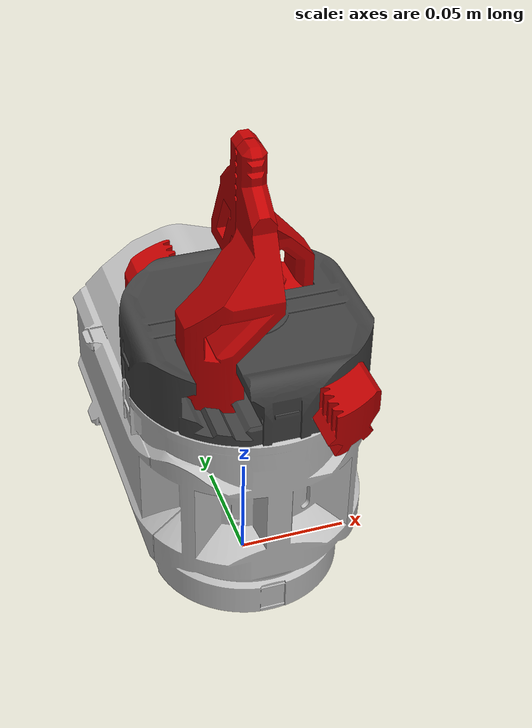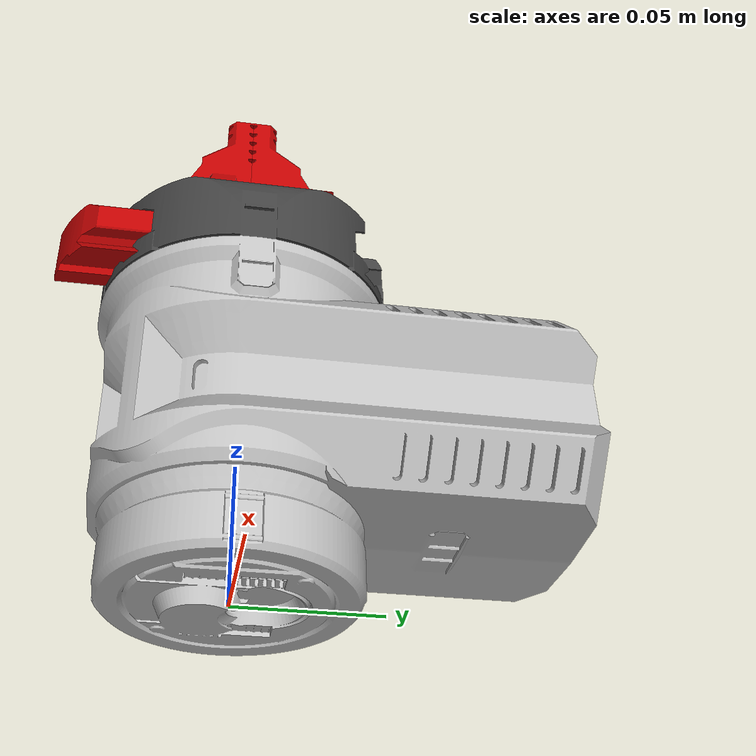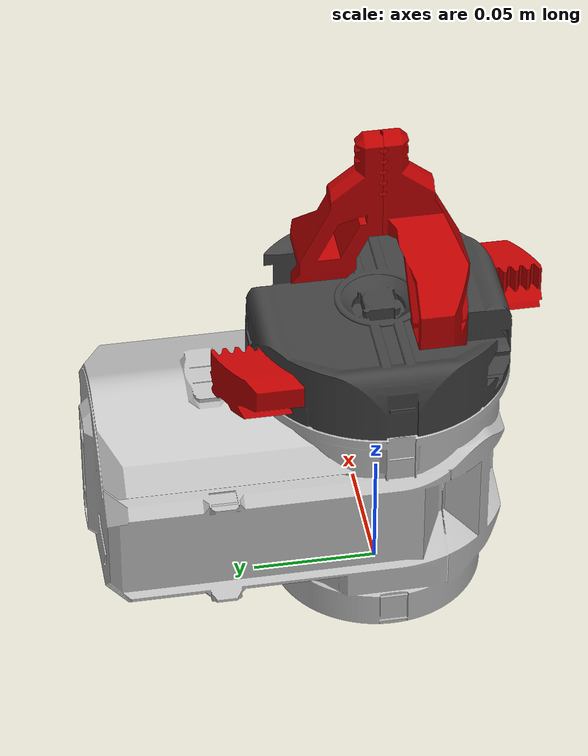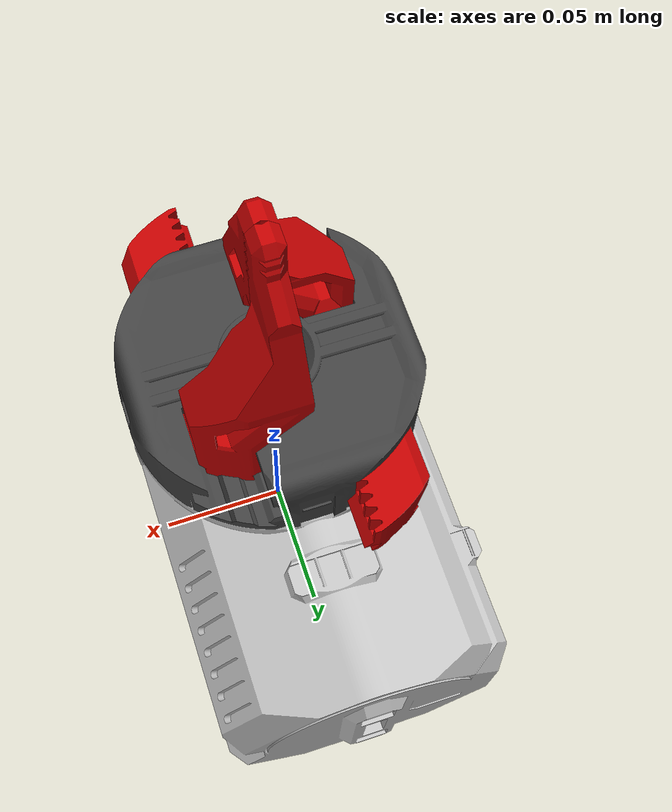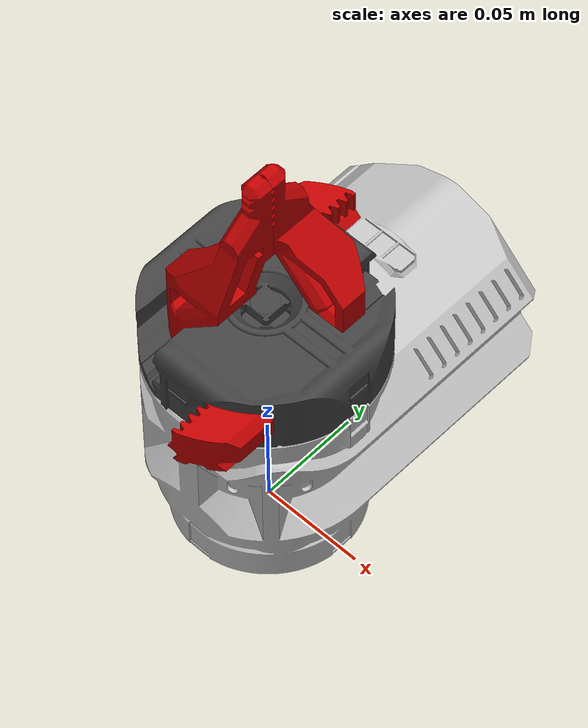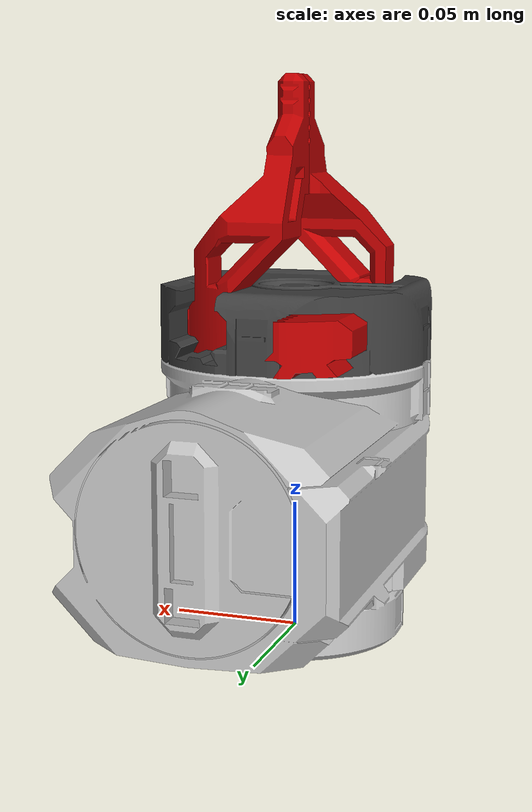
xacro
<?xml version="1.0"?>
<robot xmlns:xacro="http://www.ros.org/wiki/xacro" name="rbs-gripper">
  <xacro:include filename="$(find rbs_gripper)/urdf/rbs_gripper_macro.xacro"/>

  <xacro:arg name="hardware" default="gazebo"/>
  <link name="world"/>

  <xacro:rbs_gripper tf_prefix="" gripper_name="rbs-gripper" parent="world" hardware="$(arg hardware)">
    <origin xyz="0.0 0.0 0.0" rpy="0.0 0.0 0.0"/>
  </xacro:rbs_gripper>
</robot>

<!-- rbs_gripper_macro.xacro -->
<robot xmlns:xacro="http://wiki.ros.org/xacro">
  <xacro:include filename="$(find rbs_gripper)/urdf/rbs_gripper_ros2_control.xacro" />
  <xacro:macro name="rbs_gripper" params="tf_prefix gripper_name *origin parent hardware">

    <xacro:rbs_gripper_hardware tf_prefix="${tf_prefix}" gripper_name="${gripper_name}"
      hardware="${hardware}" />

    <joint name="${tf_prefix}${gripper_name}_gripper_base_joint" type="fixed">
      <origin xyz="0 0 0" rpy="0 0 0" />
      <parent link="${parent}" />
      <child link="${tf_prefix}${gripper_name}_gripper_base_link" />
    </joint>
    <link name="${tf_prefix}${gripper_name}_gripper_base_link">
      <inertial>
        <origin xyz="0.000364704367134063 0.0336387482840125 0.0593891203954369" rpy="0 0 0" />
        <mass value="1.13983632906086" />
        <inertia ixx="0.00107738806534129" ixy="-1.09841172461737E-05" ixz="2.62750043451545E-06"
          iyy="0.000717388573992299" iyz="-2.95426438182787E-05" izz="0.00115777179755934" />
      </inertial>
      <visual>
        <origin xyz="0 0 0" rpy="0 0 0" />
        <geometry>
          <mesh filename="file://$(find rbs_gripper)/meshes/visual/Grip_Base.dae" />
        </geometry>
        <material name="${tf_prefix}${gripper_name}_material">
          <color rgba="0.752941176470588 0.752941176470588 0.752941176470588 1" />
        </material>
      </visual>
      <collision>
        <origin xyz="0 0 0" rpy="0 0 0" />
        <geometry>
          <mesh filename="file://$(find rbs_gripper)/meshes/collision/Grip_Base.stl" />
        </geometry>
      </collision>
    </link>
    <link name="${tf_prefix}${gripper_name}_rot_base_link">
      <inertial>
        <origin xyz="6.79110135283868E-11 -3.80956832067611E-10 0.00775394473595793" rpy="0 0 0" />
        <mass value="0.161003401535982" />
        <inertia ixx="0.00011089089949771" ixy="5.01335040610636E-06" ixz="1.74608448389267E-14"
          iyy="0.000105515893695012" iyz="-2.03282362854432E-14" izz="0.000206912001661452" />
      </inertial>
      <visual>
        <origin xyz="0 0 0" rpy="0 0 0" />
        <geometry>
          <mesh filename="file://$(find rbs_gripper)/meshes/visual/Grip_Rotator.dae" />
        </geometry>
        <material name="${tf_prefix}${gripper_name}_material">
          <color rgba="0.250980392156863 0.250980392156863 0.250980392156863 1" />
        </material>
      </visual>
      <collision>
        <origin xyz="0 0 0" rpy="0 0 0" />
        <geometry>
          <mesh filename="file://$(find rbs_gripper)/meshes/collision/Grip_Rotator.stl" />
        </geometry>
      </collision>
    </link>
    <joint name="${tf_prefix}${gripper_name}_rot_base_joint" type="revolute">
      <origin xyz="0 0 0.10861" rpy="0 0 0" />
      <parent link="${tf_prefix}${gripper_name}_gripper_base_link" />
      <child link="${tf_prefix}${gripper_name}_rot_base_link" />
      <axis xyz="0 0 1" />
      <limit lower="-3.14159" upper="3.14159" effort="78" velocity="0.52" />
    <dynamics damping="0" friction="0"/>
    </joint>
    <link name="${tf_prefix}${gripper_name}_l_finger_link">
      <inertial>
        <origin xyz="0.00399878118534129 0.0187296413885176 -0.0777776233934166" rpy="0 0 0" />
        <mass value="0.0601996441483964" />
        <inertia ixx="4.18533281165612E-05" ixy="-7.11657995951147E-06" ixz="1.81029223490065E-05"
          iyy="7.89886367868258E-05" iyz="1.20542845942065E-05" izz="5.16740841307935E-05" />
      </inertial>
      <visual>
        <origin xyz="0 0 0" rpy="0 0 0" />
        <geometry>
          <mesh filename="file://$(find rbs_gripper)/meshes/visual/Gripper_1.dae" />
        </geometry>
        <material name="${tf_prefix}${gripper_name}_material">
          <color rgba="0.752941176470588 0 0 1" />
        </material>
      </visual>
      <collision>
        <origin xyz="0 0 0" rpy="0 0 0" />
        <geometry>
          <mesh filename="file://$(find rbs_gripper)/meshes/collision/Gripper_1.stl" />
        </geometry>
      </collision>
    </link>
    <joint name="${tf_prefix}${gripper_name}_l_finger_joint" type="prismatic">
      <origin xyz="0 0 0.1071" rpy="0 0 1.5708" />
      <parent link="${tf_prefix}${gripper_name}_rot_base_link" />
      <child link="${tf_prefix}${gripper_name}_l_finger_link" />
      <axis xyz="-1 0 0" />
      <limit lower="0" upper="0.064" effort="10" velocity="0.53" />
			<mimic joint="${tf_prefix}${gripper_name}_r_finger_joint" multiplier="1" />
    </joint>
    <link name="${tf_prefix}${gripper_name}_r_finger_link">
      <inertial>
        <origin xyz="0.0039988 -0.077778 -0.01873" rpy="0 0 0" />
        <mass value="0.0602" />
        <inertia ixx="4.1853E-05" ixy="1.8103E-05" ixz="7.1166E-06" iyy="5.1674E-05"
          iyz="-1.2054E-05"
          izz="7.8989E-05" />
      </inertial>
      <visual>
        <origin xyz="0 0 0" rpy="0 0 0" />
        <geometry>
          <mesh filename="file://$(find rbs_gripper)/meshes/visual/Gripper_2.dae" />
        </geometry>
        <material name="${tf_prefix}${gripper_name}_material">
          <color rgba="0.75294 0 0 1" />
        </material>
      </visual>
      <collision>
        <origin xyz="0 0 0" rpy="0 0 0" />
        <geometry>
          <mesh filename="file://$(find rbs_gripper)/meshes/collision/Gripper_2.stl" />
        </geometry>
      </collision>
    </link>
    <joint name="${tf_prefix}${gripper_name}_r_finger_joint" type="prismatic">
      <origin xyz="0 0 0.1071" rpy="1.5708 0 -1.5708" />
      <parent link="${tf_prefix}${gripper_name}_rot_base_link" />
      <child link="${tf_prefix}${gripper_name}_r_finger_link" />
      <axis xyz="-1 0 0" />
      <limit lower="0" upper="0.064" effort="10" velocity="0.53" />
    </joint>
    <link name="${tf_prefix}gripper_grasp_point" />
    <joint name="${tf_prefix}${gripper_name}_gripper_tool0_joint" type="fixed">
      <origin xyz="0 0 0.09139" rpy="0 0 0" />
      <parent link="${tf_prefix}${gripper_name}_rot_base_link" />
      <child link="${tf_prefix}gripper_grasp_point" />
    </joint>
  </xacro:macro>
</robot>
